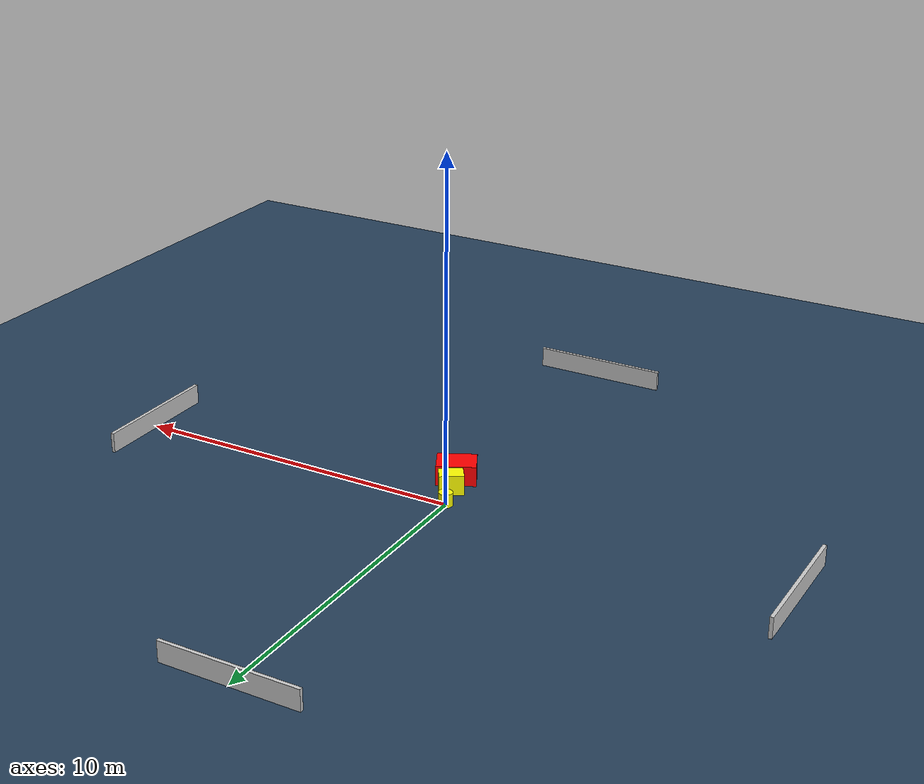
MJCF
<?xml version="1.0" ?>
<mujoco model="generated_environment">
  <option timestep="0.01" integrator="RK4" cone="elliptic"/>
  <default>
    <geom density="1"/>
  </default>
  <asset>
    <texture builtin="gradient" height="3072" name="skybox" rgb1="0.3 0.5 0.7" rgb2="0 0 0" type="skybox" width="512"/>
    <texture builtin="checker" height="300" name="groundplane" rgb1="0.2 0.3 0.4" rgb2="0.1 0.2 0.3" type="2d" width="300"/>
    <material name="groundplane" reflectance="0.2" texrepeat="5 5" texture="groundplane"/>
  </asset>
  <worldbody>
    <light dir="0 0 -1" directional="true" pos="0 0 1.5"/>
    <geom condim="3" friction="0.5 0.005 0.001" material="groundplane" name="floor" pos="0 0 0" size="0 0 0.05" type="plane"/>
    <body name="walls">
      <geom name="wall_1" condim="4" pos="-10.0 0.0 0.3" rgba="0.800000011920929 0.800000011920929 0.800000011920929 1.0" size="0.05 2.0 0.3" type="box"/>
      <geom name="wall_2" condim="4" pos="10.0 0.0 0.3" rgba="0.800000011920929 0.800000011920929 0.800000011920929 1.0" size="0.05 2.0 0.3" type="box"/>
      <geom name="wall_3" condim="4" pos="0.0 -10.0 0.3" rgba="0.800000011920929 0.800000011920929 0.800000011920929 1.0" size="2.0 0.05 0.3" type="box"/>
      <geom name="wall_4" condim="4" pos="0.0 10.0 0.3" rgba="0.800000011920929 0.800000011920929 0.800000011920929 1.0" size="2.0 0.05 0.3" type="box"/>
    </body>
    <body name="robot">
      <joint name="joint_x" type="slide" pos="0 0 0" axis="1 0 0"/>
      <joint name="joint_y" type="slide" pos="0 0 0" axis="0 1 0"/>
      <geom name="robot" type="cylinder" pos="0.0 0.0 0.2" size="0.2 0.2 0.0" mass="5.0" friction="1.0 0.005 0.0001" condim="4" rgba="1.0 1.0 0.0 1.0"/>
    </body>
    <body name="obstacle_1_movable">
      <geom name="obstacle_1_movable" condim="4" pos="0.26292391920886676 -0.7677598568093246 0.3" euler="0 0 213.4949865466672" friction="0.0 0.005 0.001" rgba="1.0 1.0 0.0 1.0" size="0.3508362942656297 0.25322269166213346 0.3" type="box" mass="0.1"/>
      <joint type="free"/>
    </body>
    <body name="obstacle_2_static">
      <geom name="obstacle_2_static" condim="4" pos="0.48652692723040264 -1.4854570180507245 0.3" euler="0 0 296.5555481745718" friction="0.0 0.005 0.001" rgba="1.0 0.0 0.0 1.0" size="0.420011753315741 0.5714189985750844 0.3" type="box"/>
    </body>
  </worldbody>
  <actuator>
    <motor name="actuator_x" joint="joint_x" gear="1" ctrlrange="-1 1"/>
    <motor name="actuator_y" joint="joint_y" gear="1" ctrlrange="-1 1"/>
  </actuator>
</mujoco>
